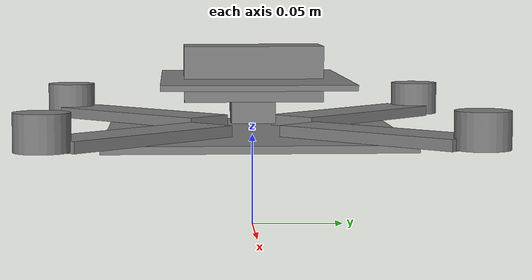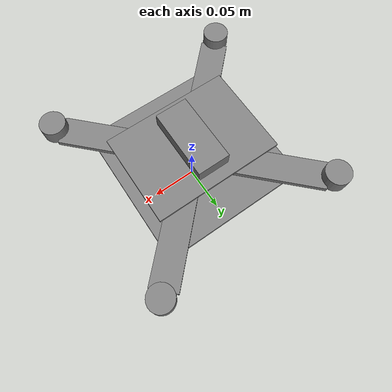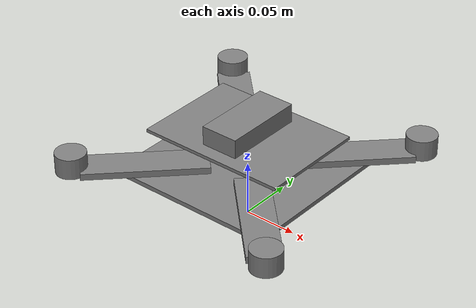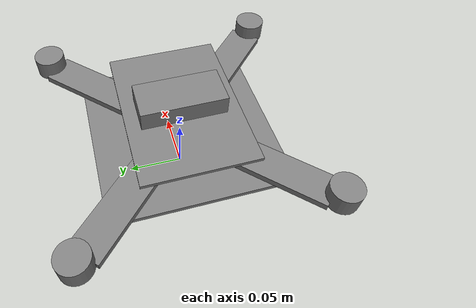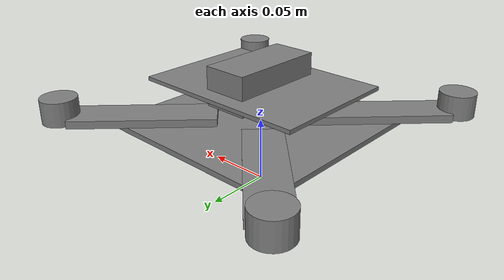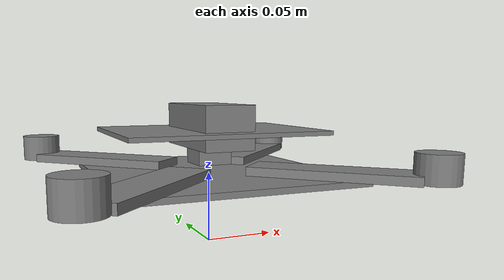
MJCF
<!-- generated by forge-sim from contract vx2-mini (schema 2.2.0) — Y-up→Z-up -->
<mujoco model="vx2-mini">
  <compiler angle="radian"/>
  <option gravity="0 0 -9.80665" density="1.225"/>
  <worldbody>
    <body name="root" pos="0 -0 0.05" quat="1 0 0 0">
      <inertial pos="-0 -0 0.002" mass="0.055" fullinertia="0.000117 0.000117 0.000233 0 -0 -0"/>
      <!-- part 0: cbox chamfer dropped (box approximation) -->
      <geom type="box" size="0.08 0.08 0.002" pos="0 0 0"/>
      <body name="top" pos="0 -0 0.03" quat="1 0 0 0">
        <inertial pos="0 -0 0.0015" mass="0.035" fullinertia="0.000029 0.000057 0.000086 -0 -0 -0"/>
        <!-- part 1: cbox chamfer dropped (box approximation) -->
        <geom type="box" size="0.07 0.05 0.0015" pos="0 0 0"/>
      </body>
      <body name="stack" pos="0 -0 0.013" quat="1 0 0 0">
        <inertial pos="0 -0 0.006" mass="0.012" fullinertia="0.000001 0.000001 0.000001 -0 -0 -0"/>
        <geom type="box" size="0.012 0.012 0.006" pos="0 0 0"/>
      </body>
      <body name="batt" pos="0 -0 0.034" quat="1 0 0 0">
        <inertial pos="0 -0 0.015" mass="0.185" fullinertia="0.000101 0.000033 0.000106 -0 0 -0"/>
        <geom type="box" size="0.0175 0.0375 0.015" pos="0 0 0"/>
      </body>
      <body name="a0" pos="0.062 -0.062 0.005" quat="0.92388 0 0 0.382683">
        <inertial pos="0 -0 0.003" mass="0.012" fullinertia="0.000012 0.000001 0.000013 -0 0 -0"/>
        <geom type="box" size="0.015 0.055 0.003" pos="0 0 0"/>
      </body>
      <body name="a1" pos="-0.062 -0.062 0.005" quat="0.92388 0 0 -0.382683">
        <inertial pos="0 -0 0.003" mass="0.012" fullinertia="0.000012 0.000001 0.000013 -0 0 -0"/>
        <geom type="box" size="0.015 0.055 0.003" pos="0 0 0"/>
      </body>
      <body name="a2" pos="-0.062 0.062 0.005" quat="-0.382683 0 0 0.92388">
        <inertial pos="0 -0 0.003" mass="0.012" fullinertia="0.000012 0.000001 0.000013 -0 0 -0"/>
        <geom type="box" size="0.015 0.055 0.003" pos="0 0 0"/>
      </body>
      <body name="a3" pos="0.062 0.062 0.005" quat="0.382683 0 0 0.92388">
        <inertial pos="0 -0 0.003" mass="0.012" fullinertia="0.000012 0.000001 0.000013 -0 0 -0"/>
        <geom type="box" size="0.015 0.055 0.003" pos="0 0 0"/>
      </body>
      <body name="m0" pos="0.106 -0.106 0.012" quat="1 0 0 0">
        <inertial pos="0 -0 0.0095" mass="0.032" fullinertia="0.000003 0.000003 0.000003 0 -0 -0"/>
        <geom type="cylinder" size="0.014 0.0095" pos="0 0 0"/>
        <body name="s0" pos="0 -0 0.022" quat="1 0 0 0">
          <joint name="s0_joint" type="hinge" axis="0 -0 1" range="-3.141593 3.141593"/>
          <inertial pos="0 -0 0.0015" mass="0.004" fullinertia="0.000004 0.000004 0.000008 0 0 0"/>
        </body>
      </body>
      <body name="m1" pos="-0.106 -0.106 0.012" quat="1 0 0 0">
        <inertial pos="0 -0 0.0095" mass="0.032" fullinertia="0.000003 0.000003 0.000003 0 -0 -0"/>
        <geom type="cylinder" size="0.014 0.0095" pos="0 0 0"/>
        <body name="s1" pos="0 -0 0.022" quat="1 0 0 0">
          <joint name="s1_joint" type="hinge" axis="0 -0 1" range="-3.141593 3.141593"/>
          <inertial pos="0 -0 0.0015" mass="0.004" fullinertia="0.000004 0.000004 0.000008 0 0 0"/>
        </body>
      </body>
      <body name="m2" pos="-0.106 0.106 0.012" quat="1 0 0 0">
        <inertial pos="0 -0 0.0095" mass="0.032" fullinertia="0.000003 0.000003 0.000003 0 -0 -0"/>
        <geom type="cylinder" size="0.014 0.0095" pos="0 0 0"/>
        <body name="s2" pos="0 -0 0.022" quat="1 0 0 0">
          <joint name="s2_joint" type="hinge" axis="0 -0 1" range="-3.141593 3.141593"/>
          <inertial pos="0 -0 0.0015" mass="0.004" fullinertia="0.000004 0.000004 0.000008 0 0 0"/>
        </body>
      </body>
      <body name="m3" pos="0.106 0.106 0.012" quat="1 0 0 0">
        <inertial pos="0 -0 0.0095" mass="0.032" fullinertia="0.000003 0.000003 0.000003 0 -0 -0"/>
        <geom type="cylinder" size="0.014 0.0095" pos="0 0 0"/>
        <body name="s3" pos="0 -0 0.022" quat="1 0 0 0">
          <joint name="s3_joint" type="hinge" axis="0 -0 1" range="-3.141593 3.141593"/>
          <inertial pos="0 -0 0.0015" mass="0.004" fullinertia="0.000004 0.000004 0.000008 0 0 0"/>
        </body>
      </body>
    </body>
  </worldbody>
  <actuator>
    <motor name="s0_motor" joint="s0_joint" gear="1"/>
    <motor name="s1_motor" joint="s1_joint" gear="1"/>
    <motor name="s2_motor" joint="s2_joint" gear="1"/>
    <motor name="s3_motor" joint="s3_joint" gear="1"/>
  </actuator>
</mujoco>
